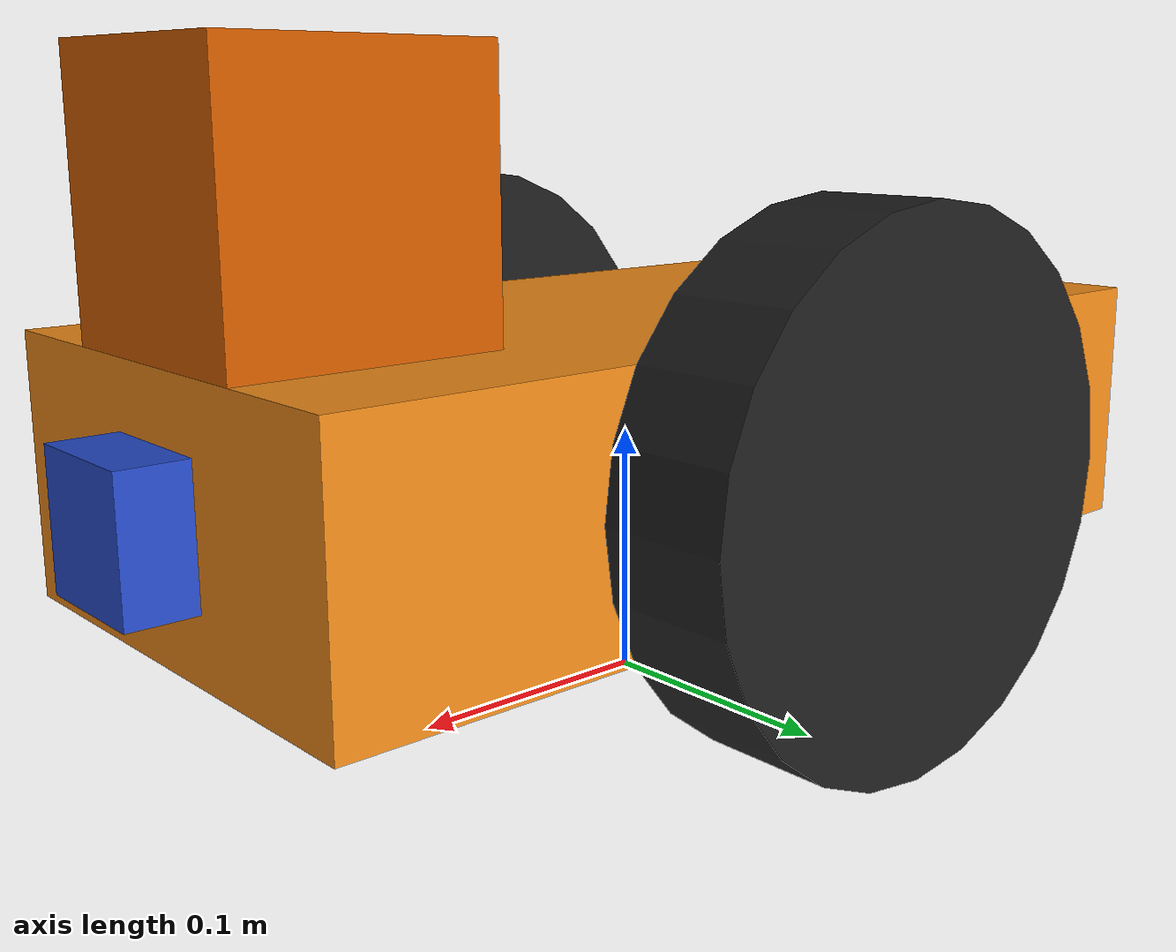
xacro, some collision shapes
<?xml version="1.0"?>
<robot name="mybot2" xmlns:xacro="http://www.ros.org/wiki/xacro">
        <!-- Put here the robot description -->

<xacro:property name="PI" value="3.1415926535897931"/>

<xacro:property name="chassisHeight" value="0.1"/>
<xacro:property name="chassisLength" value="0.4"/>
<xacro:property name="chassisWidth" value="0.2"/>
<xacro:property name="chassisMass" value="50"/>

<xacro:property name="casterRadius" value="0.05"/>
<xacro:property name="casterMass" value="5"/>

<xacro:property name="wheelWidth" value="0.05"/>
<xacro:property name="wheelRadius" value="0.1"/>
<xacro:property name="wheelPos" value="0.2"/>
<xacro:property name="wheelMass" value="5"/>

<xacro:property name="cameraSize" value="0.05"/>
<xacro:property name="cameraMass" value="0.1"/>

 <xacro:include filename="$(find mybot_description)/urdf/mybot.gazebo" />
 <xacro:include filename="$(find mybot_description)/urdf/materials.xacro" />
 <xacro:include filename="$(find mybot_description)/urdf/macros.xacro" />
<link name='chassis'>
  <collision>
    <origin xyz="0 0 ${wheelRadius}" rpy="0 0 0"/>
    <geometry>
      <box size="${chassisLength} ${chassisWidth} ${chassisHeight}"/>
    </geometry>
  </collision>
  <visual>
    <origin xyz="0 0 ${wheelRadius}" rpy="0 0 0"/>
    <geometry>
      <box size="${chassisLength} ${chassisWidth} ${chassisHeight}"/>
    </geometry>
    <material name="orange"/>
  </visual>
  <inertial>
    <origin xyz="0 0 ${wheelRadius}" rpy="0 0 0"/>
    <mass value="${chassisMass}"/>
    <box_inertia m="${chassisMass}" x="${chassisLength}" y="${chassisWidth}" z="${chassisHeight}"/>
  </inertial>
</link>

<joint name="fixed" type="fixed">
  <parent link="chassis"/>
  <child link="caster_wheel"/>
</joint>

<link name="caster_wheel">
  <collision>
    <origin xyz="${casterRadius-chassisLength/2} 0 ${casterRadius-chassisHeight+wheelRadius}" rpy="0 0 0"/>
    <geometry>
      <sphere radius="${casterRadius}"/>
    </geometry>
  </collision>

  <visual>
    <origin xyz="${casterRadius-chassisLength/2} 0 ${casterRadius-chassisHeight+wheelRadius}" rpy="0 0 0"/>
    <geometry>
      <sphere radius="${casterRadius}"/>
    </geometry>
    <material name="red"/>
  </visual>

  <inertial>
    <origin xyz="${casterRadius-chassisLength/2} 0 ${casterRadius-chassisHeight+wheelRadius}" rpy="0 0 0"/>
    <mass value="${casterMass}"/>
    <sphere_inertia m="${casterMass}" r="${casterRadius}"/>
  </inertial>
</link>

<wheel lr="left" tY="1"/>
<wheel lr="right" tY="-1"/>

<link name="camera">
  <collision>
    <origin xyz="0 0 ${wheelRadius}" rpy="0 0 0"/>
    <geometry>
      <box size="${cameraSize} ${cameraSize} ${cameraSize}"/>
    </geometry>
  </collision>

  <visual>
    <origin xyz="0 0 ${wheelRadius}" rpy="0 0 0"/>
    <geometry>
      <box size="${cameraSize} ${cameraSize} ${cameraSize}"/>
    </geometry>
    <material name="blue"/>
  </visual>

  <inertial>
    <mass value="${cameraMass}" />
    <origin xyz="0 0 0" rpy="0 0 0"/>
    <box_inertia m="${cameraMass}" x="${cameraSize}" y="${cameraSize}" z="${cameraSize}" />
  </inertial>
</link>

  <joint name="camera_joint" type="fixed">
    <axis xyz="0 1 0" />
    <origin xyz="0.2 0 0" rpy="0 0 0"/>
    <parent link="chassis"/>
    <child link="camera"/>
  </joint>

  <!-- Hokuyo Laser -->
  <link name="hokuyo">
    <collision>
      <origin xyz="0 0 ${wheelRadius}" rpy="0 0 0"/>
      <geometry>
    <box size="0.1 0.1 0.1"/>
      </geometry>
    </collision>

    <visual>
      <origin xyz="0 0 ${wheelRadius}" rpy="0 0 0"/>
      <geometry>
        <mesh filename="package://mybot_description/meshes/hokuyo.dae"/>
      </geometry>
    </visual>

    <inertial>
      <mass value="1e-5" />
      <origin xyz="0 0 0" rpy="0 0 0"/>
      <inertia ixx="1e-6" ixy="0" ixz="0" iyy="1e-6" iyz="0" izz="1e-6" />
    </inertial>
</link>

  <joint name="hokuyo_joint" type="fixed">
    <axis xyz="0 1 0" />
    <origin xyz=".15 0 .1" rpy="0 0 0"/>
    <parent link="chassis"/>
    <child link="hokuyo"/>
  </joint>

</robot>

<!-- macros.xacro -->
<robot>
  <macro name="cylinder_inertia" params="m r h">
    <inertia  ixx="${m*(3*r*r+h*h)/12}" ixy = "0" ixz = "0"
      iyy="${m*(3*r*r+h*h)/12}" iyz = "0"
      izz="${m*r*r/2}"
    />
  </macro>

  <macro name="box_inertia" params="m x y z">
    <inertia  ixx="${m*(y*y+z*z)/12}" ixy = "0" ixz = "0"
      iyy="${m*(x*x+z*z)/12}" iyz = "0"
      izz="${m*(x*x+z*z)/12}"
    />
  </macro>

  <macro name="sphere_inertia" params="m r">
    <inertia  ixx="${2*m*r*r/5}" ixy = "0" ixz = "0"
      iyy="${2*m*r*r/5}" iyz = "0"
      izz="${2*m*r*r/5}"
    />
  </macro>

  <macro name="wheel" params="lr tY">

    <link name="${lr}_wheel">
      <collision>
        <origin xyz="0 0 0" rpy="0 ${PI/2} ${PI/2}" />
        <geometry>
          <cylinder length="${wheelWidth}" radius="${wheelRadius}"/>
        </geometry>
      </collision>

      <visual>
        <origin xyz="0 0 0" rpy="0 ${PI/2} ${PI/2}" />
        <geometry>
          <cylinder length="${wheelWidth}" radius="${wheelRadius}"/>
        </geometry>
        <material name="black"/>
      </visual>

      <inertial>
        <origin xyz="0 0 0" rpy="0 ${PI/2} ${PI/2}" />
        <mass value="${wheelMass}"/>
        <cylinder_inertia m="${wheelMass}" r="${wheelRadius}" h="${wheelWidth}"/>
      </inertial>
    </link>

    <gazebo reference="${lr}_wheel">
      <mu1 value="1.0"/>
      <mu2 value="1.0"/>
      <kp  value="10000000.0" />
      <kd  value="1.0" />
      <fdir1 value="1 0 0"/>
      <material>Gazebo/Black</material>
    </gazebo>

    <joint name="${lr}_wheel_hinge" type="continuous">
      <parent link="chassis"/>
      <child link="${lr}_wheel"/>
    <origin xyz="${-wheelPos+chassisLength/2} ${tY*wheelWidth/2+tY*chassisWidth/2} ${wheelRadius}" rpy="0 0 0" />
      <axis xyz="0 1 0" rpy="0 0 0" />
      <limit effort="10000" velocity="10000"/>
      <joint_properties damping="0.0" friction="0.0"/>
    </joint>

    <transmission name="${lr}_trans">
      <type>transmission_interface/SimpleTransmission</type>
      <joint name="${lr}_wheel_hinge">
        <hardwareInterface>EffortJointInterface</hardwareInterface>
      </joint>
      <actuator name="${lr}Motor">
        <hardwareInterface>EffortJointInterface</hardwareInterface>
        <mechanicalReduction>10</mechanicalReduction>
      </actuator>
    </transmission>

  </macro>

</robot>
